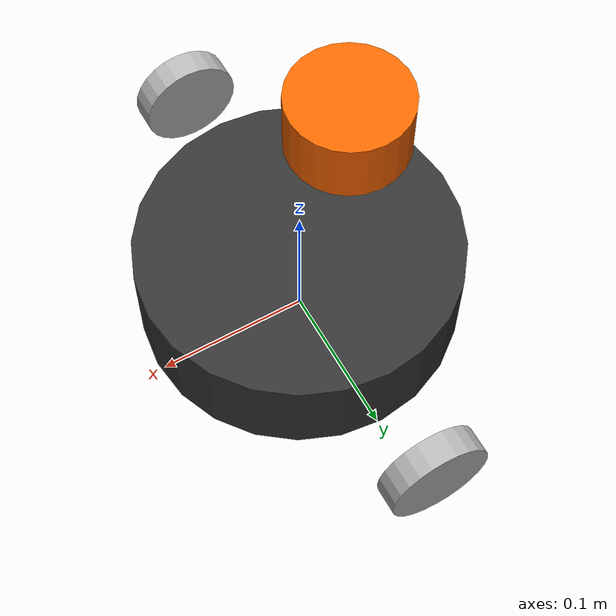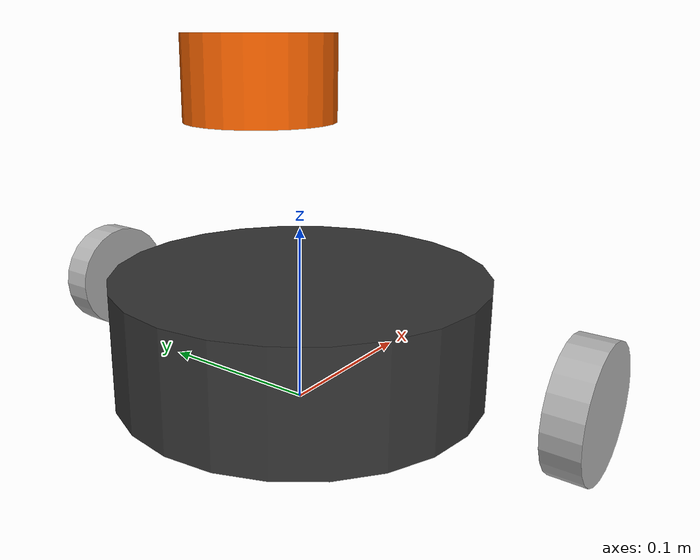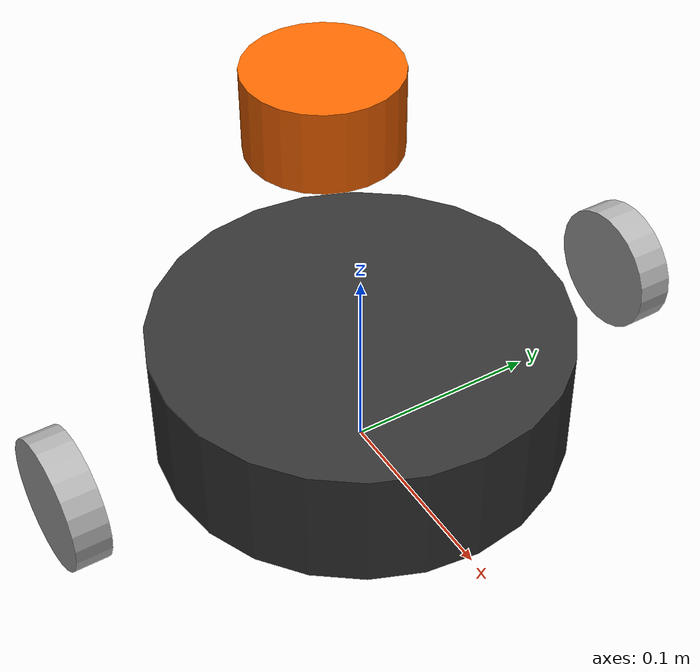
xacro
<?xml version="1.0"?>
<robot name="coffee_shop_robot" xmlns:xacro="http://www.ros.org/wiki/xacro">

  <!-- ── Parameters ─────────────────────────────────────────────────── -->
  <xacro:property name="base_mass"       value="1.0"/>
  <xacro:property name="base_radius"     value="0.105"/>
  <xacro:property name="base_height"     value="0.065"/>

  <xacro:property name="wheel_mass"      value="0.1"/>
  <xacro:property name="wheel_radius"    value="0.033"/>
  <xacro:property name="wheel_width"     value="0.018"/>
  <xacro:property name="wheel_base"      value="0.16"/>   <!-- half the track width -->

  <xacro:property name="caster_radius"   value="0.017"/>

  <!-- ── Materials ──────────────────────────────────────────────────── -->
  <material name="dark_grey">
    <color rgba="0.2 0.2 0.2 1"/>
  </material>
  <material name="light_grey">
    <color rgba="0.7 0.7 0.7 1"/>
  </material>
  <material name="orange">
    <color rgba="1.0 0.4 0.0 1"/>
  </material>

  <!-- ── Base link ──────────────────────────────────────────────────── -->
  <link name="base_footprint"/>

  <joint name="base_joint" type="fixed">
    <parent link="base_footprint"/>
    <child  link="base_link"/>
    <origin xyz="0 0 0.010" rpy="0 0 0"/>
  </joint>

  <link name="base_link">
    <visual>
      <origin xyz="0 0 ${base_height/2}" rpy="0 0 0"/>
      <geometry><cylinder radius="${base_radius}" length="${base_height}"/></geometry>
      <material name="dark_grey"/>
    </visual>
    <collision>
      <origin xyz="0 0 ${base_height/2}" rpy="0 0 0"/>
      <geometry><cylinder radius="${base_radius}" length="${base_height}"/></geometry>
    </collision>
    <inertial>
      <mass value="${base_mass}"/>
      <inertia ixx="0.0077" iyy="0.0077" izz="0.0137" ixy="0" ixz="0" iyz="0"/>
    </inertial>
  </link>

  <!-- ── Wheels ─────────────────────────────────────────────────────── -->
  <xacro:macro name="wheel" params="name x_reflect">
    <link name="${name}_wheel_link">
      <visual>
        <origin xyz="0 0 0" rpy="${pi/2} 0 0"/>
        <geometry><cylinder radius="${wheel_radius}" length="${wheel_width}"/></geometry>
        <material name="light_grey"/>
      </visual>
      <collision>
        <origin xyz="0 0 0" rpy="${pi/2} 0 0"/>
        <geometry><cylinder radius="${wheel_radius}" length="${wheel_width}"/></geometry>
      </collision>
      <inertial>
        <mass value="${wheel_mass}"/>
        <inertia ixx="0.00003" iyy="0.00003" izz="0.00006" ixy="0" ixz="0" iyz="0"/>
      </inertial>
    </link>
    <joint name="${name}_wheel_joint" type="continuous">
      <parent link="base_link"/>
      <child  link="${name}_wheel_link"/>
      <origin xyz="0 ${x_reflect * wheel_base} ${wheel_radius}" rpy="0 0 0"/>
      <axis xyz="0 1 0"/>
    </joint>
  </xacro:macro>

  <xacro:wheel name="left"  x_reflect="1"/>
  <xacro:wheel name="right" x_reflect="-1"/>

  <!-- ── Caster ─────────────────────────────────────────────────────── -->
  <link name="caster_link">
    <visual>
      <geometry><sphere radius="${caster_radius}"/></geometry>
      <material name="light_grey"/>
    </visual>
    <collision>
      <geometry><sphere radius="${caster_radius}"/></geometry>
    </collision>
    <inertial>
      <mass value="0.01"/>
      <inertia ixx="0.000001" iyy="0.000001" izz="0.000001" ixy="0" ixz="0" iyz="0"/>
    </inertial>
  </link>
  <joint name="caster_joint" type="fixed">
    <parent link="base_link"/>
    <child  link="caster_link"/>
    <origin xyz="-0.081 0 ${caster_radius}" rpy="0 0 0"/>
  </joint>

  <!-- ── LiDAR ──────────────────────────────────────────────────────── -->
  <link name="base_scan">
    <visual>
      <origin xyz="0 0 0" rpy="0 0 0"/>
      <geometry><cylinder radius="0.038" length="0.042"/></geometry>
      <material name="orange"/>
    </visual>
    <collision>
      <origin xyz="0 0 0" rpy="0 0 0"/>
      <geometry><cylinder radius="0.038" length="0.042"/></geometry>
    </collision>
    <inertial>
      <mass value="0.125"/>
      <inertia ixx="0.000000065" iyy="0.000000065" izz="0.000000101" ixy="0" ixz="0" iyz="0"/>
    </inertial>
  </link>
  <joint name="scan_joint" type="fixed">
    <parent link="base_link"/>
    <child  link="base_scan"/>
    <origin xyz="-0.032 0 0.172" rpy="0 0 0"/>
  </joint>

  <!-- ── IMU ────────────────────────────────────────────────────────── -->
  <link name="imu_link">
    <inertial>
      <mass value="0.001"/>
      <inertia ixx="0.0000001" iyy="0.0000001" izz="0.0000001" ixy="0" ixz="0" iyz="0"/>
    </inertial>
  </link>
  <joint name="imu_joint" type="fixed">
    <parent link="base_link"/>
    <child  link="imu_link"/>
    <origin xyz="-0.032 0 0.068" rpy="0 0 0"/>
  </joint>

  <!-- ── Gazebo plugins ─────────────────────────────────────────────── -->
  <!-- Differential drive controller -->
  <gazebo>
    <plugin name="differential_drive_controller"
            filename="libgazebo_ros_diff_drive.so">
      <ros>
        <remapping>cmd_vel:=cmd_vel</remapping>
        <remapping>odom:=odom</remapping>
      </ros>
      <left_joint>left_wheel_joint</left_joint>
      <right_joint>right_wheel_joint</right_joint>
      <wheel_separation>${wheel_base * 2}</wheel_separation>
      <wheel_diameter>${wheel_radius * 2}</wheel_diameter>
      <max_wheel_torque>20</max_wheel_torque>
      <max_wheel_acceleration>1.0</max_wheel_acceleration>
      <publish_odom>true</publish_odom>
      <publish_odom_tf>true</publish_odom_tf>
      <publish_wheel_tf>true</publish_wheel_tf>
      <odometry_frame>odom</odometry_frame>
      <robot_base_frame>base_footprint</robot_base_frame>
    </plugin>
  </gazebo>

  <!-- LiDAR plugin -->
  <gazebo reference="base_scan">
    <sensor type="ray" name="lds_lfcd_sensor">
      <pose>0 0 0 0 0 0</pose>
      <visualize>false</visualize>
      <update_rate>5</update_rate>
      <ray>
        <scan>
          <horizontal>
            <samples>360</samples>
            <resolution>1</resolution>
            <min_angle>0.0</min_angle>
            <max_angle>6.28319</max_angle>
          </horizontal>
        </scan>
        <range>
          <min>0.120</min>
          <max>3.5</max>
          <resolution>0.015</resolution>
        </range>
        <noise>
          <type>gaussian</type>
          <mean>0.0</mean>
          <stddev>0.01</stddev>
        </noise>
      </ray>
      <plugin name="gazebo_ros_lds_lfcd_controller"
              filename="libgazebo_ros_laser.so">
        <ros>
          <remapping>~/out:=scan</remapping>
        </ros>
        <output_type>sensor_msgs/LaserScan</output_type>
        <frame_name>base_scan</frame_name>
      </plugin>
    </sensor>
  </gazebo>

  <!-- IMU plugin -->
  <gazebo reference="imu_link">
    <sensor name="imu_sensor" type="imu">
      <always_on>true</always_on>
      <update_rate>200</update_rate>
      <visualize>true</visualize>
      <plugin filename="libgazebo_ros_imu_sensor.so" name="imu_plugin">
        <ros>
          <remapping>~/out:=imu</remapping>
        </ros>
        <initial_orientation_as_reference>false</initial_orientation_as_reference>
      </plugin>
      <pose>0 0 0 0 0 0</pose>
    </sensor>
  </gazebo>

</robot>
